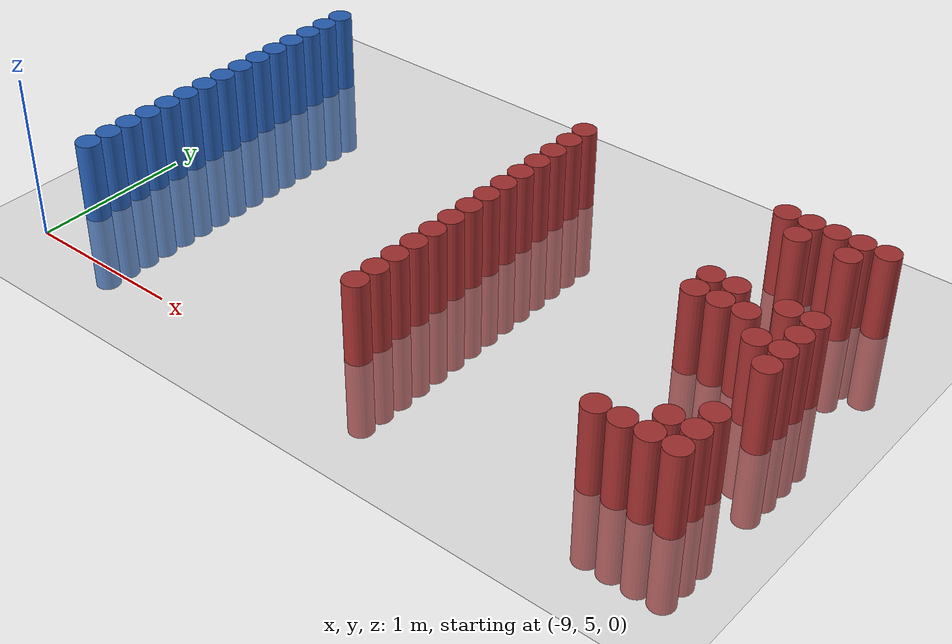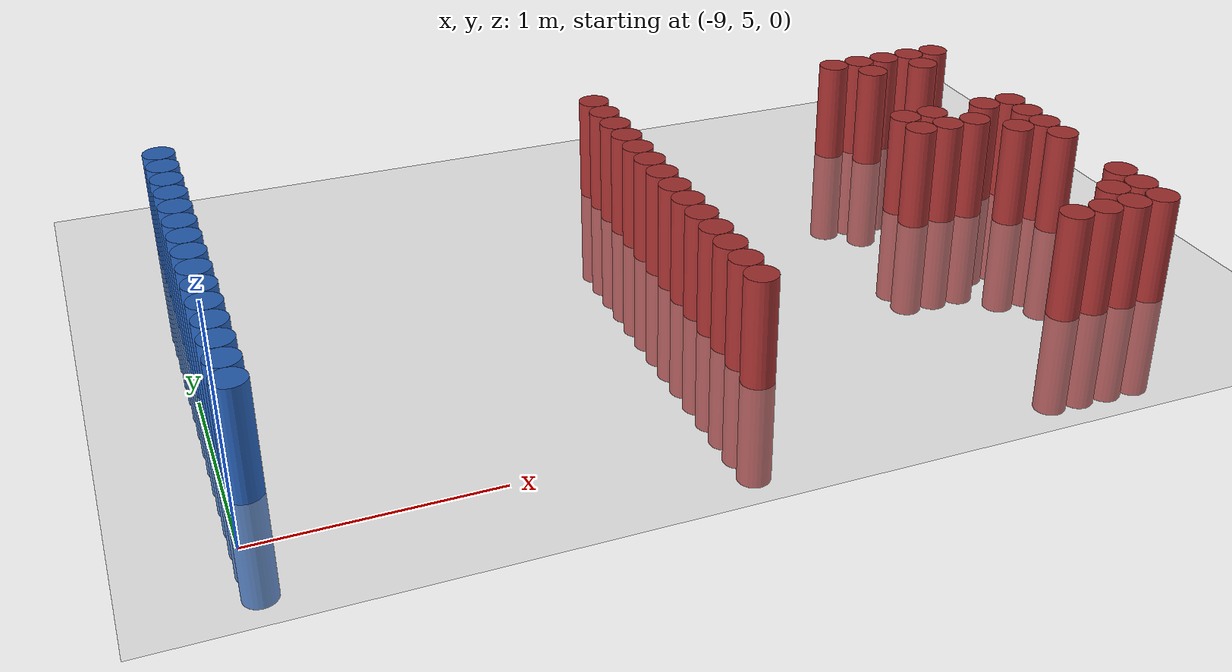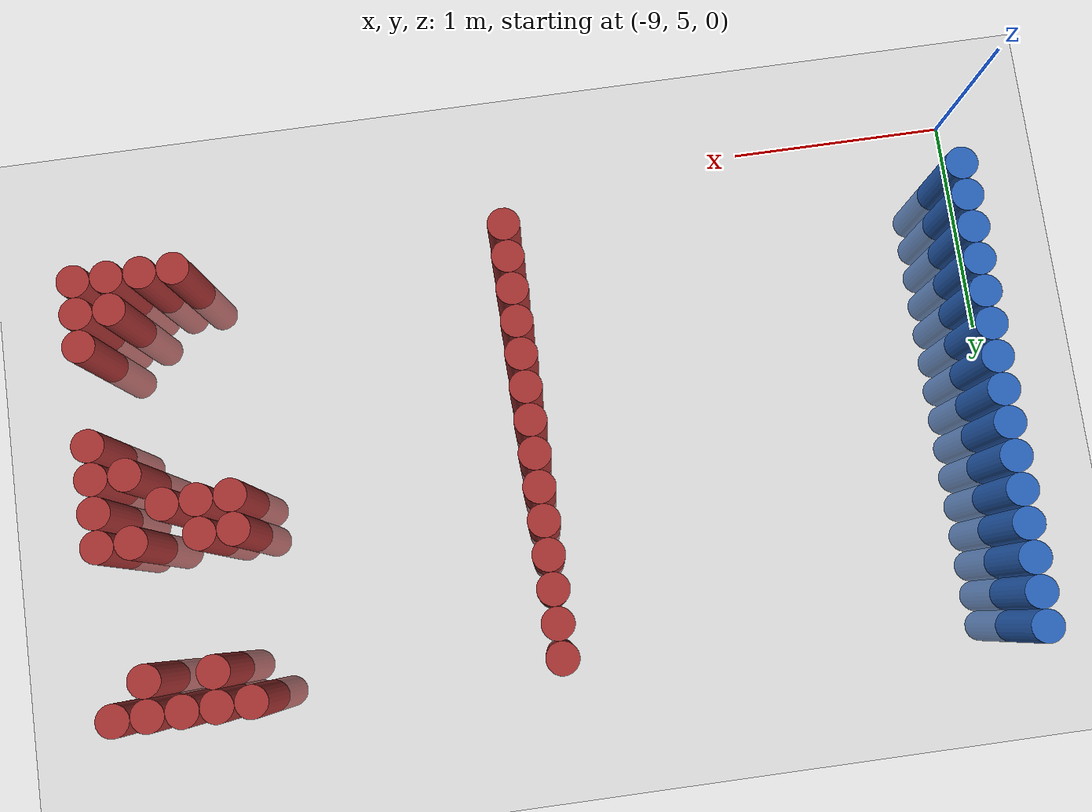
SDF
<sdf version="1.6">
 <world name="default">
  <model name="ground_plane">
   <static>1</static>
   <link name="link">
    <collision name="collision">
     <geometry><plane><normal>0 0 1</normal><size>100 100</size></plane></geometry>
     <surface><friction><ode><mu>100</mu><mu2>50</mu2></ode></friction></surface>
    </collision>
    <visual name="visual">
     <cast_shadows>0</cast_shadows>
     <geometry><plane><normal>0 0 1</normal><size>100 100</size></plane></geometry>
     <material>
      <script><uri>file://media/materials/scripts/gazebo.material</uri><name>Gazebo/Grey</name></script>
     </material>
    </visual>
   </link>
  </model>
  <model name="unit_cylinder_126">
   <static>1</static>
   <pose>-8.925000 5.325000 0.000000 0.000000 0.000000 0.000000</pose>
   <link name="link">
    <inertial>
     <mass>1</mass>
     <inertia><ixx>0.145833</ixx><ixy>0</ixy><ixz>0</ixz><iyy>0.145833</iyy><iyz>0</iyz><izz>0.125</izz></inertia>
    </inertial>
    <collision name="collision">
     <geometry><cylinder><radius>0.075000</radius><length>1</length></cylinder></geometry>
    </collision>
    <visual name="visual">
     <geometry><cylinder><radius>0.075000</radius><length>1</length></cylinder></geometry>
     <material>
      <ambient>0.152000 0.379000 0.720000 1</ambient>
      <diffuse>0.152000 0.379000 0.720000 1</diffuse>
     </material>
     <material>
      <script><name>Gazebo/Grey</name><uri>file://media/materials/scripts/gazebo.material</uri></script>
     </material>
    </visual>
   </link>
  </model>
  <model name="unit_cylinder_127">
   <static>1</static>
   <pose>-8.925000 5.475000 0.000000 0.000000 0.000000 0.000000</pose>
   <link name="link">
    <inertial>
     <mass>1</mass>
     <inertia><ixx>0.145833</ixx><ixy>0</ixy><ixz>0</ixz><iyy>0.145833</iyy><iyz>0</iyz><izz>0.125</izz></inertia>
    </inertial>
    <collision name="collision">
     <geometry><cylinder><radius>0.075000</radius><length>1</length></cylinder></geometry>
    </collision>
    <visual name="visual">
     <geometry><cylinder><radius>0.075000</radius><length>1</length></cylinder></geometry>
     <material>
      <ambient>0.152000 0.379000 0.720000 1</ambient>
      <diffuse>0.152000 0.379000 0.720000 1</diffuse>
     </material>
     <material>
      <script><name>Gazebo/Grey</name><uri>file://media/materials/scripts/gazebo.material</uri></script>
     </material>
    </visual>
   </link>
  </model>
  <model name="unit_cylinder_128">
   <static>1</static>
   <pose>-8.925000 5.625000 0.000000 0.000000 0.000000 0.000000</pose>
   <link name="link">
    <inertial>
     <mass>1</mass>
     <inertia><ixx>0.145833</ixx><ixy>0</ixy><ixz>0</ixz><iyy>0.145833</iyy><iyz>0</iyz><izz>0.125</izz></inertia>
    </inertial>
    <collision name="collision">
     <geometry><cylinder><radius>0.075000</radius><length>1</length></cylinder></geometry>
    </collision>
    <visual name="visual">
     <geometry><cylinder><radius>0.075000</radius><length>1</length></cylinder></geometry>
     <material>
      <ambient>0.152000 0.379000 0.720000 1</ambient>
      <diffuse>0.152000 0.379000 0.720000 1</diffuse>
     </material>
     <material>
      <script><name>Gazebo/Grey</name><uri>file://media/materials/scripts/gazebo.material</uri></script>
     </material>
    </visual>
   </link>
  </model>
  <model name="unit_cylinder_129">
   <static>1</static>
   <pose>-8.925000 5.775000 0.000000 0.000000 0.000000 0.000000</pose>
   <link name="link">
    <inertial>
     <mass>1</mass>
     <inertia><ixx>0.145833</ixx><ixy>0</ixy><ixz>0</ixz><iyy>0.145833</iyy><iyz>0</iyz><izz>0.125</izz></inertia>
    </inertial>
    <collision name="collision">
     <geometry><cylinder><radius>0.075000</radius><length>1</length></cylinder></geometry>
    </collision>
    <visual name="visual">
     <geometry><cylinder><radius>0.075000</radius><length>1</length></cylinder></geometry>
     <material>
      <ambient>0.152000 0.379000 0.720000 1</ambient>
      <diffuse>0.152000 0.379000 0.720000 1</diffuse>
     </material>
     <material>
      <script><name>Gazebo/Grey</name><uri>file://media/materials/scripts/gazebo.material</uri></script>
     </material>
    </visual>
   </link>
  </model>
  <model name="unit_cylinder_130">
   <static>1</static>
   <pose>-8.925000 5.925000 0.000000 0.000000 0.000000 0.000000</pose>
   <link name="link">
    <inertial>
     <mass>1</mass>
     <inertia><ixx>0.145833</ixx><ixy>0</ixy><ixz>0</ixz><iyy>0.145833</iyy><iyz>0</iyz><izz>0.125</izz></inertia>
    </inertial>
    <collision name="collision">
     <geometry><cylinder><radius>0.075000</radius><length>1</length></cylinder></geometry>
    </collision>
    <visual name="visual">
     <geometry><cylinder><radius>0.075000</radius><length>1</length></cylinder></geometry>
     <material>
      <ambient>0.152000 0.379000 0.720000 1</ambient>
      <diffuse>0.152000 0.379000 0.720000 1</diffuse>
     </material>
     <material>
      <script><name>Gazebo/Grey</name><uri>file://media/materials/scripts/gazebo.material</uri></script>
     </material>
    </visual>
   </link>
  </model>
  <model name="unit_cylinder_131">
   <static>1</static>
   <pose>-8.925000 6.075000 0.000000 0.000000 0.000000 0.000000</pose>
   <link name="link">
    <inertial>
     <mass>1</mass>
     <inertia><ixx>0.145833</ixx><ixy>0</ixy><ixz>0</ixz><iyy>0.145833</iyy><iyz>0</iyz><izz>0.125</izz></inertia>
    </inertial>
    <collision name="collision">
     <geometry><cylinder><radius>0.075000</radius><length>1</length></cylinder></geometry>
    </collision>
    <visual name="visual">
     <geometry><cylinder><radius>0.075000</radius><length>1</length></cylinder></geometry>
     <material>
      <ambient>0.152000 0.379000 0.720000 1</ambient>
      <diffuse>0.152000 0.379000 0.720000 1</diffuse>
     </material>
     <material>
      <script><name>Gazebo/Grey</name><uri>file://media/materials/scripts/gazebo.material</uri></script>
     </material>
    </visual>
   </link>
  </model>
  <model name="unit_cylinder_132">
   <static>1</static>
   <pose>-8.925000 6.225000 0.000000 0.000000 0.000000 0.000000</pose>
   <link name="link">
    <inertial>
     <mass>1</mass>
     <inertia><ixx>0.145833</ixx><ixy>0</ixy><ixz>0</ixz><iyy>0.145833</iyy><iyz>0</iyz><izz>0.125</izz></inertia>
    </inertial>
    <collision name="collision">
     <geometry><cylinder><radius>0.075000</radius><length>1</length></cylinder></geometry>
    </collision>
    <visual name="visual">
     <geometry><cylinder><radius>0.075000</radius><length>1</length></cylinder></geometry>
     <material>
      <ambient>0.152000 0.379000 0.720000 1</ambient>
      <diffuse>0.152000 0.379000 0.720000 1</diffuse>
     </material>
     <material>
      <script><name>Gazebo/Grey</name><uri>file://media/materials/scripts/gazebo.material</uri></script>
     </material>
    </visual>
   </link>
  </model>
  <model name="unit_cylinder_133">
   <static>1</static>
   <pose>-8.925000 6.375000 0.000000 0.000000 0.000000 0.000000</pose>
   <link name="link">
    <inertial>
     <mass>1</mass>
     <inertia><ixx>0.145833</ixx><ixy>0</ixy><ixz>0</ixz><iyy>0.145833</iyy><iyz>0</iyz><izz>0.125</izz></inertia>
    </inertial>
    <collision name="collision">
     <geometry><cylinder><radius>0.075000</radius><length>1</length></cylinder></geometry>
    </collision>
    <visual name="visual">
     <geometry><cylinder><radius>0.075000</radius><length>1</length></cylinder></geometry>
     <material>
      <ambient>0.152000 0.379000 0.720000 1</ambient>
      <diffuse>0.152000 0.379000 0.720000 1</diffuse>
     </material>
     <material>
      <script><name>Gazebo/Grey</name><uri>file://media/materials/scripts/gazebo.material</uri></script>
     </material>
    </visual>
   </link>
  </model>
  <model name="unit_cylinder_134">
   <static>1</static>
   <pose>-8.925000 6.525000 0.000000 0.000000 0.000000 0.000000</pose>
   <link name="link">
    <inertial>
     <mass>1</mass>
     <inertia><ixx>0.145833</ixx><ixy>0</ixy><ixz>0</ixz><iyy>0.145833</iyy><iyz>0</iyz><izz>0.125</izz></inertia>
    </inertial>
    <collision name="collision">
     <geometry><cylinder><radius>0.075000</radius><length>1</length></cylinder></geometry>
    </collision>
    <visual name="visual">
     <geometry><cylinder><radius>0.075000</radius><length>1</length></cylinder></geometry>
     <material>
      <ambient>0.152000 0.379000 0.720000 1</ambient>
      <diffuse>0.152000 0.379000 0.720000 1</diffuse>
     </material>
     <material>
      <script><name>Gazebo/Grey</name><uri>file://media/materials/scripts/gazebo.material</uri></script>
     </material>
    </visual>
   </link>
  </model>
  <model name="unit_cylinder_135">
   <static>1</static>
   <pose>-8.925000 6.675000 0.000000 0.000000 0.000000 0.000000</pose>
   <link name="link">
    <inertial>
     <mass>1</mass>
     <inertia><ixx>0.145833</ixx><ixy>0</ixy><ixz>0</ixz><iyy>0.145833</iyy><iyz>0</iyz><izz>0.125</izz></inertia>
    </inertial>
    <collision name="collision">
     <geometry><cylinder><radius>0.075000</radius><length>1</length></cylinder></geometry>
    </collision>
    <visual name="visual">
     <geometry><cylinder><radius>0.075000</radius><length>1</length></cylinder></geometry>
     <material>
      <ambient>0.152000 0.379000 0.720000 1</ambient>
      <diffuse>0.152000 0.379000 0.720000 1</diffuse>
     </material>
     <material>
      <script><name>Gazebo/Grey</name><uri>file://media/materials/scripts/gazebo.material</uri></script>
     </material>
    </visual>
   </link>
  </model>
  <model name="unit_cylinder_136">
   <static>1</static>
   <pose>-8.925000 6.825000 0.000000 0.000000 0.000000 0.000000</pose>
   <link name="link">
    <inertial>
     <mass>1</mass>
     <inertia><ixx>0.145833</ixx><ixy>0</ixy><ixz>0</ixz><iyy>0.145833</iyy><iyz>0</iyz><izz>0.125</izz></inertia>
    </inertial>
    <collision name="collision">
     <geometry><cylinder><radius>0.075000</radius><length>1</length></cylinder></geometry>
    </collision>
    <visual name="visual">
     <geometry><cylinder><radius>0.075000</radius><length>1</length></cylinder></geometry>
     <material>
      <ambient>0.152000 0.379000 0.720000 1</ambient>
      <diffuse>0.152000 0.379000 0.720000 1</diffuse>
     </material>
     <material>
      <script><name>Gazebo/Grey</name><uri>file://media/materials/scripts/gazebo.material</uri></script>
     </material>
    </visual>
   </link>
  </model>
  <model name="unit_cylinder_137">
   <static>1</static>
   <pose>-8.925000 6.975000 0.000000 0.000000 0.000000 0.000000</pose>
   <link name="link">
    <inertial>
     <mass>1</mass>
     <inertia><ixx>0.145833</ixx><ixy>0</ixy><ixz>0</ixz><iyy>0.145833</iyy><iyz>0</iyz><izz>0.125</izz></inertia>
    </inertial>
    <collision name="collision">
     <geometry><cylinder><radius>0.075000</radius><length>1</length></cylinder></geometry>
    </collision>
    <visual name="visual">
     <geometry><cylinder><radius>0.075000</radius><length>1</length></cylinder></geometry>
     <material>
      <ambient>0.152000 0.379000 0.720000 1</ambient>
      <diffuse>0.152000 0.379000 0.720000 1</diffuse>
     </material>
     <material>
      <script><name>Gazebo/Grey</name><uri>file://media/materials/scripts/gazebo.material</uri></script>
     </material>
    </visual>
   </link>
  </model>
  <model name="unit_cylinder_138">
   <static>1</static>
   <pose>-8.925000 7.125000 0.000000 0.000000 0.000000 0.000000</pose>
   <link name="link">
    <inertial>
     <mass>1</mass>
     <inertia><ixx>0.145833</ixx><ixy>0</ixy><ixz>0</ixz><iyy>0.145833</iyy><iyz>0</iyz><izz>0.125</izz></inertia>
    </inertial>
    <collision name="collision">
     <geometry><cylinder><radius>0.075000</radius><length>1</length></cylinder></geometry>
    </collision>
    <visual name="visual">
     <geometry><cylinder><radius>0.075000</radius><length>1</length></cylinder></geometry>
     <material>
      <ambient>0.152000 0.379000 0.720000 1</ambient>
      <diffuse>0.152000 0.379000 0.720000 1</diffuse>
     </material>
     <material>
      <script><name>Gazebo/Grey</name><uri>file://media/materials/scripts/gazebo.material</uri></script>
     </material>
    </visual>
   </link>
  </model>
  <model name="unit_cylinder_139">
   <static>1</static>
   <pose>-8.925000 7.275000 0.000000 0.000000 0.000000 0.000000</pose>
   <link name="link">
    <inertial>
     <mass>1</mass>
     <inertia><ixx>0.145833</ixx><ixy>0</ixy><ixz>0</ixz><iyy>0.145833</iyy><iyz>0</iyz><izz>0.125</izz></inertia>
    </inertial>
    <collision name="collision">
     <geometry><cylinder><radius>0.075000</radius><length>1</length></cylinder></geometry>
    </collision>
    <visual name="visual">
     <geometry><cylinder><radius>0.075000</radius><length>1</length></cylinder></geometry>
     <material>
      <ambient>0.152000 0.379000 0.720000 1</ambient>
      <diffuse>0.152000 0.379000 0.720000 1</diffuse>
     </material>
     <material>
      <script><name>Gazebo/Grey</name><uri>file://media/materials/scripts/gazebo.material</uri></script>
     </material>
    </visual>
   </link>
  </model>
  <model name="unit_cylinder_140">
   <static>1</static>
   <pose>-8.925000 7.425000 0.000000 0.000000 0.000000 0.000000</pose>
   <link name="link">
    <inertial>
     <mass>1</mass>
     <inertia><ixx>0.145833</ixx><ixy>0</ixy><ixz>0</ixz><iyy>0.145833</iyy><iyz>0</iyz><izz>0.125</izz></inertia>
    </inertial>
    <collision name="collision">
     <geometry><cylinder><radius>0.075000</radius><length>1</length></cylinder></geometry>
    </collision>
    <visual name="visual">
     <geometry><cylinder><radius>0.075000</radius><length>1</length></cylinder></geometry>
     <material>
      <ambient>0.152000 0.379000 0.720000 1</ambient>
      <diffuse>0.152000 0.379000 0.720000 1</diffuse>
     </material>
     <material>
      <script><name>Gazebo/Grey</name><uri>file://media/materials/scripts/gazebo.material</uri></script>
     </material>
    </visual>
   </link>
  </model>
  <model name="unit_cylinder_182">
   <static>1</static>
   <pose>-6.825000 5.325000 0.000000 0.000000 0.000000 0.000000</pose>
   <link name="link">
    <inertial>
     <mass>1</mass>
     <inertia><ixx>0.145833</ixx><ixy>0</ixy><ixz>0</ixz><iyy>0.145833</iyy><iyz>0</iyz><izz>0.125</izz></inertia>
    </inertial>
    <collision name="collision">
     <geometry><cylinder><radius>0.075000</radius><length>1</length></cylinder></geometry>
    </collision>
    <visual name="visual">
     <geometry><cylinder><radius>0.075000</radius><length>1</length></cylinder></geometry>
     <material>
      <ambient>0.648000 0.192000 0.192000 1</ambient>
      <diffuse>0.648000 0.192000 0.192000 1</diffuse>
     </material>
     <material>
      <script><name>Gazebo/Grey</name><uri>file://media/materials/scripts/gazebo.material</uri></script>
     </material>
    </visual>
   </link>
  </model>
  <model name="unit_cylinder_183">
   <static>1</static>
   <pose>-6.825000 5.475000 0.000000 0.000000 0.000000 0.000000</pose>
   <link name="link">
    <inertial>
     <mass>1</mass>
     <inertia><ixx>0.145833</ixx><ixy>0</ixy><ixz>0</ixz><iyy>0.145833</iyy><iyz>0</iyz><izz>0.125</izz></inertia>
    </inertial>
    <collision name="collision">
     <geometry><cylinder><radius>0.075000</radius><length>1</length></cylinder></geometry>
    </collision>
    <visual name="visual">
     <geometry><cylinder><radius>0.075000</radius><length>1</length></cylinder></geometry>
     <material>
      <ambient>0.648000 0.192000 0.192000 1</ambient>
      <diffuse>0.648000 0.192000 0.192000 1</diffuse>
     </material>
     <material>
      <script><name>Gazebo/Grey</name><uri>file://media/materials/scripts/gazebo.material</uri></script>
     </material>
    </visual>
   </link>
  </model>
  <model name="unit_cylinder_184">
   <static>1</static>
   <pose>-6.825000 5.625000 0.000000 0.000000 0.000000 0.000000</pose>
   <link name="link">
    <inertial>
     <mass>1</mass>
     <inertia><ixx>0.145833</ixx><ixy>0</ixy><ixz>0</ixz><iyy>0.145833</iyy><iyz>0</iyz><izz>0.125</izz></inertia>
    </inertial>
    <collision name="collision">
     <geometry><cylinder><radius>0.075000</radius><length>1</length></cylinder></geometry>
    </collision>
    <visual name="visual">
     <geometry><cylinder><radius>0.075000</radius><length>1</length></cylinder></geometry>
     <material>
      <ambient>0.648000 0.192000 0.192000 1</ambient>
      <diffuse>0.648000 0.192000 0.192000 1</diffuse>
     </material>
     <material>
      <script><name>Gazebo/Grey</name><uri>file://media/materials/scripts/gazebo.material</uri></script>
     </material>
    </visual>
   </link>
  </model>
  <model name="unit_cylinder_185">
   <static>1</static>
   <pose>-6.825000 5.775000 0.000000 0.000000 0.000000 0.000000</pose>
   <link name="link">
    <inertial>
     <mass>1</mass>
     <inertia><ixx>0.145833</ixx><ixy>0</ixy><ixz>0</ixz><iyy>0.145833</iyy><iyz>0</iyz><izz>0.125</izz></inertia>
    </inertial>
    <collision name="collision">
     <geometry><cylinder><radius>0.075000</radius><length>1</length></cylinder></geometry>
    </collision>
    <visual name="visual">
     <geometry><cylinder><radius>0.075000</radius><length>1</length></cylinder></geometry>
     <material>
      <ambient>0.648000 0.192000 0.192000 1</ambient>
      <diffuse>0.648000 0.192000 0.192000 1</diffuse>
     </material>
     <material>
      <script><name>Gazebo/Grey</name><uri>file://media/materials/scripts/gazebo.material</uri></script>
     </material>
    </visual>
   </link>
  </model>
  <model name="unit_cylinder_186">
   <static>1</static>
   <pose>-6.825000 5.925000 0.000000 0.000000 0.000000 0.000000</pose>
   <link name="link">
    <inertial>
     <mass>1</mass>
     <inertia><ixx>0.145833</ixx><ixy>0</ixy><ixz>0</ixz><iyy>0.145833</iyy><iyz>0</iyz><izz>0.125</izz></inertia>
    </inertial>
    <collision name="collision">
     <geometry><cylinder><radius>0.075000</radius><length>1</length></cylinder></geometry>
    </collision>
    <visual name="visual">
     <geometry><cylinder><radius>0.075000</radius><length>1</length></cylinder></geometry>
     <material>
      <ambient>0.648000 0.192000 0.192000 1</ambient>
      <diffuse>0.648000 0.192000 0.192000 1</diffuse>
     </material>
     <material>
      <script><name>Gazebo/Grey</name><uri>file://media/materials/scripts/gazebo.material</uri></script>
     </material>
    </visual>
   </link>
  </model>
  <model name="unit_cylinder_187">
   <static>1</static>
   <pose>-6.825000 6.075000 0.000000 0.000000 0.000000 0.000000</pose>
   <link name="link">
    <inertial>
     <mass>1</mass>
     <inertia><ixx>0.145833</ixx><ixy>0</ixy><ixz>0</ixz><iyy>0.145833</iyy><iyz>0</iyz><izz>0.125</izz></inertia>
    </inertial>
    <collision name="collision">
     <geometry><cylinder><radius>0.075000</radius><length>1</length></cylinder></geometry>
    </collision>
    <visual name="visual">
     <geometry><cylinder><radius>0.075000</radius><length>1</length></cylinder></geometry>
     <material>
      <ambient>0.648000 0.192000 0.192000 1</ambient>
      <diffuse>0.648000 0.192000 0.192000 1</diffuse>
     </material>
     <material>
      <script><name>Gazebo/Grey</name><uri>file://media/materials/scripts/gazebo.material</uri></script>
     </material>
    </visual>
   </link>
  </model>
  <model name="unit_cylinder_188">
   <static>1</static>
   <pose>-6.825000 6.225000 0.000000 0.000000 0.000000 0.000000</pose>
   <link name="link">
    <inertial>
     <mass>1</mass>
     <inertia><ixx>0.145833</ixx><ixy>0</ixy><ixz>0</ixz><iyy>0.145833</iyy><iyz>0</iyz><izz>0.125</izz></inertia>
    </inertial>
    <collision name="collision">
     <geometry><cylinder><radius>0.075000</radius><length>1</length></cylinder></geometry>
    </collision>
    <visual name="visual">
     <geometry><cylinder><radius>0.075000</radius><length>1</length></cylinder></geometry>
     <material>
      <ambient>0.648000 0.192000 0.192000 1</ambient>
      <diffuse>0.648000 0.192000 0.192000 1</diffuse>
     </material>
     <material>
      <script><name>Gazebo/Grey</name><uri>file://media/materials/scripts/gazebo.material</uri></script>
     </material>
    </visual>
   </link>
  </model>
  <model name="unit_cylinder_189">
   <static>1</static>
   <pose>-6.825000 6.375000 0.000000 0.000000 0.000000 0.000000</pose>
   <link name="link">
    <inertial>
     <mass>1</mass>
     <inertia><ixx>0.145833</ixx><ixy>0</ixy><ixz>0</ixz><iyy>0.145833</iyy><iyz>0</iyz><izz>0.125</izz></inertia>
    </inertial>
    <collision name="collision">
     <geometry><cylinder><radius>0.075000</radius><length>1</length></cylinder></geometry>
    </collision>
    <visual name="visual">
     <geometry><cylinder><radius>0.075000</radius><length>1</length></cylinder></geometry>
     <material>
      <ambient>0.648000 0.192000 0.192000 1</ambient>
      <diffuse>0.648000 0.192000 0.192000 1</diffuse>
     </material>
     <material>
      <script><name>Gazebo/Grey</name><uri>file://media/materials/scripts/gazebo.material</uri></script>
     </material>
    </visual>
   </link>
  </model>
  <model name="unit_cylinder_190">
   <static>1</static>
   <pose>-6.825000 6.525000 0.000000 0.000000 0.000000 0.000000</pose>
   <link name="link">
    <inertial>
     <mass>1</mass>
     <inertia><ixx>0.145833</ixx><ixy>0</ixy><ixz>0</ixz><iyy>0.145833</iyy><iyz>0</iyz><izz>0.125</izz></inertia>
    </inertial>
    <collision name="collision">
     <geometry><cylinder><radius>0.075000</radius><length>1</length></cylinder></geometry>
    </collision>
    <visual name="visual">
     <geometry><cylinder><radius>0.075000</radius><length>1</length></cylinder></geometry>
     <material>
      <ambient>0.648000 0.192000 0.192000 1</ambient>
      <diffuse>0.648000 0.192000 0.192000 1</diffuse>
     </material>
     <material>
      <script><name>Gazebo/Grey</name><uri>file://media/materials/scripts/gazebo.material</uri></script>
     </material>
    </visual>
   </link>
  </model>
  <model name="unit_cylinder_191">
   <static>1</static>
   <pose>-6.825000 6.675000 0.000000 0.000000 0.000000 0.000000</pose>
   <link name="link">
    <inertial>
     <mass>1</mass>
     <inertia><ixx>0.145833</ixx><ixy>0</ixy><ixz>0</ixz><iyy>0.145833</iyy><iyz>0</iyz><izz>0.125</izz></inertia>
    </inertial>
    <collision name="collision">
     <geometry><cylinder><radius>0.075000</radius><length>1</length></cylinder></geometry>
    </collision>
    <visual name="visual">
     <geometry><cylinder><radius>0.075000</radius><length>1</length></cylinder></geometry>
     <material>
      <ambient>0.648000 0.192000 0.192000 1</ambient>
      <diffuse>0.648000 0.192000 0.192000 1</diffuse>
     </material>
     <material>
      <script><name>Gazebo/Grey</name><uri>file://media/materials/scripts/gazebo.material</uri></script>
     </material>
    </visual>
   </link>
  </model>
  <model name="unit_cylinder_192">
   <static>1</static>
   <pose>-6.825000 6.825000 0.000000 0.000000 0.000000 0.000000</pose>
   <link name="link">
    <inertial>
     <mass>1</mass>
     <inertia><ixx>0.145833</ixx><ixy>0</ixy><ixz>0</ixz><iyy>0.145833</iyy><iyz>0</iyz><izz>0.125</izz></inertia>
    </inertial>
    <collision name="collision">
     <geometry><cylinder><radius>0.075000</radius><length>1</length></cylinder></geometry>
    </collision>
    <visual name="visual">
     <geometry><cylinder><radius>0.075000</radius><length>1</length></cylinder></geometry>
     <material>
      <ambient>0.648000 0.192000 0.192000 1</ambient>
      <diffuse>0.648000 0.192000 0.192000 1</diffuse>
     </material>
     <material>
      <script><name>Gazebo/Grey</name><uri>file://media/materials/scripts/gazebo.material</uri></script>
     </material>
    </visual>
   </link>
  </model>
  <model name="unit_cylinder_193">
   <static>1</static>
   <pose>-6.825000 6.975000 0.000000 0.000000 0.000000 0.000000</pose>
   <link name="link">
    <inertial>
     <mass>1</mass>
     <inertia><ixx>0.145833</ixx><ixy>0</ixy><ixz>0</ixz><iyy>0.145833</iyy><iyz>0</iyz><izz>0.125</izz></inertia>
    </inertial>
    <collision name="collision">
     <geometry><cylinder><radius>0.075000</radius><length>1</length></cylinder></geometry>
    </collision>
    <visual name="visual">
     <geometry><cylinder><radius>0.075000</radius><length>1</length></cylinder></geometry>
     <material>
      <ambient>0.648000 0.192000 0.192000 1</ambient>
      <diffuse>0.648000 0.192000 0.192000 1</diffuse>
     </material>
     <material>
      <script><name>Gazebo/Grey</name><uri>file://media/materials/scripts/gazebo.material</uri></script>
     </material>
    </visual>
   </link>
  </model>
  <model name="unit_cylinder_194">
   <static>1</static>
   <pose>-6.825000 7.125000 0.000000 0.000000 0.000000 0.000000</pose>
   <link name="link">
    <inertial>
     <mass>1</mass>
     <inertia><ixx>0.145833</ixx><ixy>0</ixy><ixz>0</ixz><iyy>0.145833</iyy><iyz>0</iyz><izz>0.125</izz></inertia>
    </inertial>
    <collision name="collision">
     <geometry><cylinder><radius>0.075000</radius><length>1</length></cylinder></geometry>
    </collision>
    <visual name="visual">
     <geometry><cylinder><radius>0.075000</radius><length>1</length></cylinder></geometry>
     <material>
      <ambient>0.648000 0.192000 0.192000 1</ambient>
      <diffuse>0.648000 0.192000 0.192000 1</diffuse>
     </material>
     <material>
      <script><name>Gazebo/Grey</name><uri>file://media/materials/scripts/gazebo.material</uri></script>
     </material>
    </visual>
   </link>
  </model>
  <model name="unit_cylinder_195">
   <static>1</static>
   <pose>-6.825000 7.275000 0.000000 0.000000 0.000000 0.000000</pose>
   <link name="link">
    <inertial>
     <mass>1</mass>
     <inertia><ixx>0.145833</ixx><ixy>0</ixy><ixz>0</ixz><iyy>0.145833</iyy><iyz>0</iyz><izz>0.125</izz></inertia>
    </inertial>
    <collision name="collision">
     <geometry><cylinder><radius>0.075000</radius><length>1</length></cylinder></geometry>
    </collision>
    <visual name="visual">
     <geometry><cylinder><radius>0.075000</radius><length>1</length></cylinder></geometry>
     <material>
      <ambient>0.648000 0.192000 0.192000 1</ambient>
      <diffuse>0.648000 0.192000 0.192000 1</diffuse>
     </material>
     <material>
      <script><name>Gazebo/Grey</name><uri>file://media/materials/scripts/gazebo.material</uri></script>
     </material>
    </visual>
   </link>
  </model>
  <model name="unit_cylinder_213">
   <static>1</static>
   <pose>-5.475000 6.375000 0.000000 0.000000 0.000000 0.000000</pose>
   <link name="link">
    <inertial>
     <mass>1</mass>
     <inertia><ixx>0.145833</ixx><ixy>0</ixy><ixz>0</ixz><iyy>0.145833</iyy><iyz>0</iyz><izz>0.125</izz></inertia>
    </inertial>
    <collision name="collision">
     <geometry><cylinder><radius>0.075000</radius><length>1</length></cylinder></geometry>
    </collision>
    <visual name="visual">
     <geometry><cylinder><radius>0.075000</radius><length>1</length></cylinder></geometry>
     <material>
      <ambient>0.648000 0.192000 0.192000 1</ambient>
      <diffuse>0.648000 0.192000 0.192000 1</diffuse>
     </material>
     <material>
      <script><name>Gazebo/Grey</name><uri>file://media/materials/scripts/gazebo.material</uri></script>
     </material>
    </visual>
   </link>
  </model>
  <model name="unit_cylinder_214">
   <static>1</static>
   <pose>-5.475000 6.525000 0.000000 0.000000 0.000000 0.000000</pose>
   <link name="link">
    <inertial>
     <mass>1</mass>
     <inertia><ixx>0.145833</ixx><ixy>0</ixy><ixz>0</ixz><iyy>0.145833</iyy><iyz>0</iyz><izz>0.125</izz></inertia>
    </inertial>
    <collision name="collision">
     <geometry><cylinder><radius>0.075000</radius><length>1</length></cylinder></geometry>
    </collision>
    <visual name="visual">
     <geometry><cylinder><radius>0.075000</radius><length>1</length></cylinder></geometry>
     <material>
      <ambient>0.648000 0.192000 0.192000 1</ambient>
      <diffuse>0.648000 0.192000 0.192000 1</diffuse>
     </material>
     <material>
      <script><name>Gazebo/Grey</name><uri>file://media/materials/scripts/gazebo.material</uri></script>
     </material>
    </visual>
   </link>
  </model>
  <model name="unit_cylinder_215">
   <static>1</static>
   <pose>-5.475000 7.275000 0.000000 0.000000 0.000000 0.000000</pose>
   <link name="link">
    <inertial>
     <mass>1</mass>
     <inertia><ixx>0.145833</ixx><ixy>0</ixy><ixz>0</ixz><iyy>0.145833</iyy><iyz>0</iyz><izz>0.125</izz></inertia>
    </inertial>
    <collision name="collision">
     <geometry><cylinder><radius>0.075000</radius><length>1</length></cylinder></geometry>
    </collision>
    <visual name="visual">
     <geometry><cylinder><radius>0.075000</radius><length>1</length></cylinder></geometry>
     <material>
      <ambient>0.648000 0.192000 0.192000 1</ambient>
      <diffuse>0.648000 0.192000 0.192000 1</diffuse>
     </material>
     <material>
      <script><name>Gazebo/Grey</name><uri>file://media/materials/scripts/gazebo.material</uri></script>
     </material>
    </visual>
   </link>
  </model>
  <model name="unit_cylinder_218">
   <static>1</static>
   <pose>-5.325000 5.325000 0.000000 0.000000 0.000000 0.000000</pose>
   <link name="link">
    <inertial>
     <mass>1</mass>
     <inertia><ixx>0.145833</ixx><ixy>0</ixy><ixz>0</ixz><iyy>0.145833</iyy><iyz>0</iyz><izz>0.125</izz></inertia>
    </inertial>
    <collision name="collision">
     <geometry><cylinder><radius>0.075000</radius><length>1</length></cylinder></geometry>
    </collision>
    <visual name="visual">
     <geometry><cylinder><radius>0.075000</radius><length>1</length></cylinder></geometry>
     <material>
      <ambient>0.648000 0.192000 0.192000 1</ambient>
      <diffuse>0.648000 0.192000 0.192000 1</diffuse>
     </material>
     <material>
      <script><name>Gazebo/Grey</name><uri>file://media/materials/scripts/gazebo.material</uri></script>
     </material>
    </visual>
   </link>
  </model>
  <model name="unit_cylinder_219">
   <static>1</static>
   <pose>-5.325000 6.375000 0.000000 0.000000 0.000000 0.000000</pose>
   <link name="link">
    <inertial>
     <mass>1</mass>
     <inertia><ixx>0.145833</ixx><ixy>0</ixy><ixz>0</ixz><iyy>0.145833</iyy><iyz>0</iyz><izz>0.125</izz></inertia>
    </inertial>
    <collision name="collision">
     <geometry><cylinder><radius>0.075000</radius><length>1</length></cylinder></geometry>
    </collision>
    <visual name="visual">
     <geometry><cylinder><radius>0.075000</radius><length>1</length></cylinder></geometry>
     <material>
      <ambient>0.648000 0.192000 0.192000 1</ambient>
      <diffuse>0.648000 0.192000 0.192000 1</diffuse>
     </material>
     <material>
      <script><name>Gazebo/Grey</name><uri>file://media/materials/scripts/gazebo.material</uri></script>
     </material>
    </visual>
   </link>
  </model>
  <model name="unit_cylinder_220">
   <static>1</static>
   <pose>-5.325000 6.525000 0.000000 0.000000 0.000000 0.000000</pose>
   <link name="link">
    <inertial>
     <mass>1</mass>
     <inertia><ixx>0.145833</ixx><ixy>0</ixy><ixz>0</ixz><iyy>0.145833</iyy><iyz>0</iyz><izz>0.125</izz></inertia>
    </inertial>
    <collision name="collision">
     <geometry><cylinder><radius>0.075000</radius><length>1</length></cylinder></geometry>
    </collision>
    <visual name="visual">
     <geometry><cylinder><radius>0.075000</radius><length>1</length></cylinder></geometry>
     <material>
      <ambient>0.648000 0.192000 0.192000 1</ambient>
      <diffuse>0.648000 0.192000 0.192000 1</diffuse>
     </material>
     <material>
      <script><name>Gazebo/Grey</name><uri>file://media/materials/scripts/gazebo.material</uri></script>
     </material>
    </visual>
   </link>
  </model>
  <model name="unit_cylinder_221">
   <static>1</static>
   <pose>-5.325000 7.125000 0.000000 0.000000 0.000000 0.000000</pose>
   <link name="link">
    <inertial>
     <mass>1</mass>
     <inertia><ixx>0.145833</ixx><ixy>0</ixy><ixz>0</ixz><iyy>0.145833</iyy><iyz>0</iyz><izz>0.125</izz></inertia>
    </inertial>
    <collision name="collision">
     <geometry><cylinder><radius>0.075000</radius><length>1</length></cylinder></geometry>
    </collision>
    <visual name="visual">
     <geometry><cylinder><radius>0.075000</radius><length>1</length></cylinder></geometry>
     <material>
      <ambient>0.648000 0.192000 0.192000 1</ambient>
      <diffuse>0.648000 0.192000 0.192000 1</diffuse>
     </material>
     <material>
      <script><name>Gazebo/Grey</name><uri>file://media/materials/scripts/gazebo.material</uri></script>
     </material>
    </visual>
   </link>
  </model>
  <model name="unit_cylinder_222">
   <static>1</static>
   <pose>-5.325000 7.275000 0.000000 0.000000 0.000000 0.000000</pose>
   <link name="link">
    <inertial>
     <mass>1</mass>
     <inertia><ixx>0.145833</ixx><ixy>0</ixy><ixz>0</ixz><iyy>0.145833</iyy><iyz>0</iyz><izz>0.125</izz></inertia>
    </inertial>
    <collision name="collision">
     <geometry><cylinder><radius>0.075000</radius><length>1</length></cylinder></geometry>
    </collision>
    <visual name="visual">
     <geometry><cylinder><radius>0.075000</radius><length>1</length></cylinder></geometry>
     <material>
      <ambient>0.648000 0.192000 0.192000 1</ambient>
      <diffuse>0.648000 0.192000 0.192000 1</diffuse>
     </material>
     <material>
      <script><name>Gazebo/Grey</name><uri>file://media/materials/scripts/gazebo.material</uri></script>
     </material>
    </visual>
   </link>
  </model>
  <model name="unit_cylinder_226">
   <static>1</static>
   <pose>-5.175000 5.325000 0.000000 0.000000 0.000000 0.000000</pose>
   <link name="link">
    <inertial>
     <mass>1</mass>
     <inertia><ixx>0.145833</ixx><ixy>0</ixy><ixz>0</ixz><iyy>0.145833</iyy><iyz>0</iyz><izz>0.125</izz></inertia>
    </inertial>
    <collision name="collision">
     <geometry><cylinder><radius>0.075000</radius><length>1</length></cylinder></geometry>
    </collision>
    <visual name="visual">
     <geometry><cylinder><radius>0.075000</radius><length>1</length></cylinder></geometry>
     <material>
      <ambient>0.648000 0.192000 0.192000 1</ambient>
      <diffuse>0.648000 0.192000 0.192000 1</diffuse>
     </material>
     <material>
      <script><name>Gazebo/Grey</name><uri>file://media/materials/scripts/gazebo.material</uri></script>
     </material>
    </visual>
   </link>
  </model>
  <model name="unit_cylinder_227">
   <static>1</static>
   <pose>-5.175000 6.375000 0.000000 0.000000 0.000000 0.000000</pose>
   <link name="link">
    <inertial>
     <mass>1</mass>
     <inertia><ixx>0.145833</ixx><ixy>0</ixy><ixz>0</ixz><iyy>0.145833</iyy><iyz>0</iyz><izz>0.125</izz></inertia>
    </inertial>
    <collision name="collision">
     <geometry><cylinder><radius>0.075000</radius><length>1</length></cylinder></geometry>
    </collision>
    <visual name="visual">
     <geometry><cylinder><radius>0.075000</radius><length>1</length></cylinder></geometry>
     <material>
      <ambient>0.648000 0.192000 0.192000 1</ambient>
      <diffuse>0.648000 0.192000 0.192000 1</diffuse>
     </material>
     <material>
      <script><name>Gazebo/Grey</name><uri>file://media/materials/scripts/gazebo.material</uri></script>
     </material>
    </visual>
   </link>
  </model>
  <model name="unit_cylinder_228">
   <static>1</static>
   <pose>-5.175000 7.275000 0.000000 0.000000 0.000000 0.000000</pose>
   <link name="link">
    <inertial>
     <mass>1</mass>
     <inertia><ixx>0.145833</ixx><ixy>0</ixy><ixz>0</ixz><iyy>0.145833</iyy><iyz>0</iyz><izz>0.125</izz></inertia>
    </inertial>
    <collision name="collision">
     <geometry><cylinder><radius>0.075000</radius><length>1</length></cylinder></geometry>
    </collision>
    <visual name="visual">
     <geometry><cylinder><radius>0.075000</radius><length>1</length></cylinder></geometry>
     <material>
      <ambient>0.648000 0.192000 0.192000 1</ambient>
      <diffuse>0.648000 0.192000 0.192000 1</diffuse>
     </material>
     <material>
      <script><name>Gazebo/Grey</name><uri>file://media/materials/scripts/gazebo.material</uri></script>
     </material>
    </visual>
   </link>
  </model>
  <model name="unit_cylinder_233">
   <static>1</static>
   <pose>-5.025000 5.325000 0.000000 0.000000 0.000000 0.000000</pose>
   <link name="link">
    <inertial>
     <mass>1</mass>
     <inertia><ixx>0.145833</ixx><ixy>0</ixy><ixz>0</ixz><iyy>0.145833</iyy><iyz>0</iyz><izz>0.125</izz></inertia>
    </inertial>
    <collision name="collision">
     <geometry><cylinder><radius>0.075000</radius><length>1</length></cylinder></geometry>
    </collision>
    <visual name="visual">
     <geometry><cylinder><radius>0.075000</radius><length>1</length></cylinder></geometry>
     <material>
      <ambient>0.648000 0.192000 0.192000 1</ambient>
      <diffuse>0.648000 0.192000 0.192000 1</diffuse>
     </material>
     <material>
      <script><name>Gazebo/Grey</name><uri>file://media/materials/scripts/gazebo.material</uri></script>
     </material>
    </visual>
   </link>
  </model>
  <model name="unit_cylinder_234">
   <static>1</static>
   <pose>-5.025000 5.475000 0.000000 0.000000 0.000000 0.000000</pose>
   <link name="link">
    <inertial>
     <mass>1</mass>
     <inertia><ixx>0.145833</ixx><ixy>0</ixy><ixz>0</ixz><iyy>0.145833</iyy><iyz>0</iyz><izz>0.125</izz></inertia>
    </inertial>
    <collision name="collision">
     <geometry><cylinder><radius>0.075000</radius><length>1</length></cylinder></geometry>
    </collision>
    <visual name="visual">
     <geometry><cylinder><radius>0.075000</radius><length>1</length></cylinder></geometry>
     <material>
      <ambient>0.648000 0.192000 0.192000 1</ambient>
      <diffuse>0.648000 0.192000 0.192000 1</diffuse>
     </material>
     <material>
      <script><name>Gazebo/Grey</name><uri>file://media/materials/scripts/gazebo.material</uri></script>
     </material>
    </visual>
   </link>
  </model>
  <model name="unit_cylinder_235">
   <static>1</static>
   <pose>-5.025000 6.225000 0.000000 0.000000 0.000000 0.000000</pose>
   <link name="link">
    <inertial>
     <mass>1</mass>
     <inertia><ixx>0.145833</ixx><ixy>0</ixy><ixz>0</ixz><iyy>0.145833</iyy><iyz>0</iyz><izz>0.125</izz></inertia>
    </inertial>
    <collision name="collision">
     <geometry><cylinder><radius>0.075000</radius><length>1</length></cylinder></geometry>
    </collision>
    <visual name="visual">
     <geometry><cylinder><radius>0.075000</radius><length>1</length></cylinder></geometry>
     <material>
      <ambient>0.648000 0.192000 0.192000 1</ambient>
      <diffuse>0.648000 0.192000 0.192000 1</diffuse>
     </material>
     <material>
      <script><name>Gazebo/Grey</name><uri>file://media/materials/scripts/gazebo.material</uri></script>
     </material>
    </visual>
   </link>
  </model>
  <model name="unit_cylinder_236">
   <static>1</static>
   <pose>-5.025000 6.525000 0.000000 0.000000 0.000000 0.000000</pose>
   <link name="link">
    <inertial>
     <mass>1</mass>
     <inertia><ixx>0.145833</ixx><ixy>0</ixy><ixz>0</ixz><iyy>0.145833</iyy><iyz>0</iyz><izz>0.125</izz></inertia>
    </inertial>
    <collision name="collision">
     <geometry><cylinder><radius>0.075000</radius><length>1</length></cylinder></geometry>
    </collision>
    <visual name="visual">
     <geometry><cylinder><radius>0.075000</radius><length>1</length></cylinder></geometry>
     <material>
      <ambient>0.648000 0.192000 0.192000 1</ambient>
      <diffuse>0.648000 0.192000 0.192000 1</diffuse>
     </material>
     <material>
      <script><name>Gazebo/Grey</name><uri>file://media/materials/scripts/gazebo.material</uri></script>
     </material>
    </visual>
   </link>
  </model>
  <model name="unit_cylinder_237">
   <static>1</static>
   <pose>-5.025000 7.125000 0.000000 0.000000 0.000000 0.000000</pose>
   <link name="link">
    <inertial>
     <mass>1</mass>
     <inertia><ixx>0.145833</ixx><ixy>0</ixy><ixz>0</ixz><iyy>0.145833</iyy><iyz>0</iyz><izz>0.125</izz></inertia>
    </inertial>
    <collision name="collision">
     <geometry><cylinder><radius>0.075000</radius><length>1</length></cylinder></geometry>
    </collision>
    <visual name="visual">
     <geometry><cylinder><radius>0.075000</radius><length>1</length></cylinder></geometry>
     <material>
      <ambient>0.648000 0.192000 0.192000 1</ambient>
      <diffuse>0.648000 0.192000 0.192000 1</diffuse>
     </material>
     <material>
      <script><name>Gazebo/Grey</name><uri>file://media/materials/scripts/gazebo.material</uri></script>
     </material>
    </visual>
   </link>
  </model>
  <model name="unit_cylinder_238">
   <static>1</static>
   <pose>-5.025000 7.275000 0.000000 0.000000 0.000000 0.000000</pose>
   <link name="link">
    <inertial>
     <mass>1</mass>
     <inertia><ixx>0.145833</ixx><ixy>0</ixy><ixz>0</ixz><iyy>0.145833</iyy><iyz>0</iyz><izz>0.125</izz></inertia>
    </inertial>
    <collision name="collision">
     <geometry><cylinder><radius>0.075000</radius><length>1</length></cylinder></geometry>
    </collision>
    <visual name="visual">
     <geometry><cylinder><radius>0.075000</radius><length>1</length></cylinder></geometry>
     <material>
      <ambient>0.648000 0.192000 0.192000 1</ambient>
      <diffuse>0.648000 0.192000 0.192000 1</diffuse>
     </material>
     <material>
      <script><name>Gazebo/Grey</name><uri>file://media/materials/scripts/gazebo.material</uri></script>
     </material>
    </visual>
   </link>
  </model>
  <model name="unit_cylinder_241">
   <static>1</static>
   <pose>-4.875000 5.325000 0.000000 0.000000 0.000000 0.000000</pose>
   <link name="link">
    <inertial>
     <mass>1</mass>
     <inertia><ixx>0.145833</ixx><ixy>0</ixy><ixz>0</ixz><iyy>0.145833</iyy><iyz>0</iyz><izz>0.125</izz></inertia>
    </inertial>
    <collision name="collision">
     <geometry><cylinder><radius>0.075000</radius><length>1</length></cylinder></geometry>
    </collision>
    <visual name="visual">
     <geometry><cylinder><radius>0.075000</radius><length>1</length></cylinder></geometry>
     <material>
      <ambient>0.648000 0.192000 0.192000 1</ambient>
      <diffuse>0.648000 0.192000 0.192000 1</diffuse>
     </material>
     <material>
      <script><name>Gazebo/Grey</name><uri>file://media/materials/scripts/gazebo.material</uri></script>
     </material>
    </visual>
   </link>
  </model>
  <model name="unit_cylinder_242">
   <static>1</static>
   <pose>-4.875000 5.475000 0.000000 0.000000 0.000000 0.000000</pose>
   <link name="link">
    <inertial>
     <mass>1</mass>
     <inertia><ixx>0.145833</ixx><ixy>0</ixy><ixz>0</ixz><iyy>0.145833</iyy><iyz>0</iyz><izz>0.125</izz></inertia>
    </inertial>
    <collision name="collision">
     <geometry><cylinder><radius>0.075000</radius><length>1</length></cylinder></geometry>
    </collision>
    <visual name="visual">
     <geometry><cylinder><radius>0.075000</radius><length>1</length></cylinder></geometry>
     <material>
      <ambient>0.648000 0.192000 0.192000 1</ambient>
      <diffuse>0.648000 0.192000 0.192000 1</diffuse>
     </material>
     <material>
      <script><name>Gazebo/Grey</name><uri>file://media/materials/scripts/gazebo.material</uri></script>
     </material>
    </visual>
   </link>
  </model>
  <model name="unit_cylinder_243">
   <static>1</static>
   <pose>-4.875000 5.625000 0.000000 0.000000 0.000000 0.000000</pose>
   <link name="link">
    <inertial>
     <mass>1</mass>
     <inertia><ixx>0.145833</ixx><ixy>0</ixy><ixz>0</ixz><iyy>0.145833</iyy><iyz>0</iyz><izz>0.125</izz></inertia>
    </inertial>
    <collision name="collision">
     <geometry><cylinder><radius>0.075000</radius><length>1</length></cylinder></geometry>
    </collision>
    <visual name="visual">
     <geometry><cylinder><radius>0.075000</radius><length>1</length></cylinder></geometry>
     <material>
      <ambient>0.648000 0.192000 0.192000 1</ambient>
      <diffuse>0.648000 0.192000 0.192000 1</diffuse>
     </material>
     <material>
      <script><name>Gazebo/Grey</name><uri>file://media/materials/scripts/gazebo.material</uri></script>
     </material>
    </visual>
   </link>
  </model>
  <model name="unit_cylinder_244">
   <static>1</static>
   <pose>-4.875000 6.075000 0.000000 0.000000 0.000000 0.000000</pose>
   <link name="link">
    <inertial>
     <mass>1</mass>
     <inertia><ixx>0.145833</ixx><ixy>0</ixy><ixz>0</ixz><iyy>0.145833</iyy><iyz>0</iyz><izz>0.125</izz></inertia>
    </inertial>
    <collision name="collision">
     <geometry><cylinder><radius>0.075000</radius><length>1</length></cylinder></geometry>
    </collision>
    <visual name="visual">
     <geometry><cylinder><radius>0.075000</radius><length>1</length></cylinder></geometry>
     <material>
      <ambient>0.648000 0.192000 0.192000 1</ambient>
      <diffuse>0.648000 0.192000 0.192000 1</diffuse>
     </material>
     <material>
      <script><name>Gazebo/Grey</name><uri>file://media/materials/scripts/gazebo.material</uri></script>
     </material>
    </visual>
   </link>
  </model>
  <model name="unit_cylinder_245">
   <static>1</static>
   <pose>-4.875000 6.225000 0.000000 0.000000 0.000000 0.000000</pose>
   <link name="link">
    <inertial>
     <mass>1</mass>
     <inertia><ixx>0.145833</ixx><ixy>0</ixy><ixz>0</ixz><iyy>0.145833</iyy><iyz>0</iyz><izz>0.125</izz></inertia>
    </inertial>
    <collision name="collision">
     <geometry><cylinder><radius>0.075000</radius><length>1</length></cylinder></geometry>
    </collision>
    <visual name="visual">
     <geometry><cylinder><radius>0.075000</radius><length>1</length></cylinder></geometry>
     <material>
      <ambient>0.648000 0.192000 0.192000 1</ambient>
      <diffuse>0.648000 0.192000 0.192000 1</diffuse>
     </material>
     <material>
      <script><name>Gazebo/Grey</name><uri>file://media/materials/scripts/gazebo.material</uri></script>
     </material>
    </visual>
   </link>
  </model>
  <model name="unit_cylinder_246">
   <static>1</static>
   <pose>-4.875000 6.375000 0.000000 0.000000 0.000000 0.000000</pose>
   <link name="link">
    <inertial>
     <mass>1</mass>
     <inertia><ixx>0.145833</ixx><ixy>0</ixy><ixz>0</ixz><iyy>0.145833</iyy><iyz>0</iyz><izz>0.125</izz></inertia>
    </inertial>
    <collision name="collision">
     <geometry><cylinder><radius>0.075000</radius><length>1</length></cylinder></geometry>
    </collision>
    <visual name="visual">
     <geometry><cylinder><radius>0.075000</radius><length>1</length></cylinder></geometry>
     <material>
      <ambient>0.648000 0.192000 0.192000 1</ambient>
      <diffuse>0.648000 0.192000 0.192000 1</diffuse>
     </material>
     <material>
      <script><name>Gazebo/Grey</name><uri>file://media/materials/scripts/gazebo.material</uri></script>
     </material>
    </visual>
   </link>
  </model>
  <model name="unit_cylinder_247">
   <static>1</static>
   <pose>-4.875000 6.525000 0.000000 0.000000 0.000000 0.000000</pose>
   <link name="link">
    <inertial>
     <mass>1</mass>
     <inertia><ixx>0.145833</ixx><ixy>0</ixy><ixz>0</ixz><iyy>0.145833</iyy><iyz>0</iyz><izz>0.125</izz></inertia>
    </inertial>
    <collision name="collision">
     <geometry><cylinder><radius>0.075000</radius><length>1</length></cylinder></geometry>
    </collision>
    <visual name="visual">
     <geometry><cylinder><radius>0.075000</radius><length>1</length></cylinder></geometry>
     <material>
      <ambient>0.648000 0.192000 0.192000 1</ambient>
      <diffuse>0.648000 0.192000 0.192000 1</diffuse>
     </material>
     <material>
      <script><name>Gazebo/Grey</name><uri>file://media/materials/scripts/gazebo.material</uri></script>
     </material>
    </visual>
   </link>
  </model>
  <model name="unit_cylinder_248">
   <static>1</static>
   <pose>-4.875000 7.275000 0.000000 0.000000 0.000000 0.000000</pose>
   <link name="link">
    <inertial>
     <mass>1</mass>
     <inertia><ixx>0.145833</ixx><ixy>0</ixy><ixz>0</ixz><iyy>0.145833</iyy><iyz>0</iyz><izz>0.125</izz></inertia>
    </inertial>
    <collision name="collision">
     <geometry><cylinder><radius>0.075000</radius><length>1</length></cylinder></geometry>
    </collision>
    <visual name="visual">
     <geometry><cylinder><radius>0.075000</radius><length>1</length></cylinder></geometry>
     <material>
      <ambient>0.648000 0.192000 0.192000 1</ambient>
      <diffuse>0.648000 0.192000 0.192000 1</diffuse>
     </material>
     <material>
      <script><name>Gazebo/Grey</name><uri>file://media/materials/scripts/gazebo.material</uri></script>
     </material>
    </visual>
   </link>
  </model>
 </world>
</sdf>
